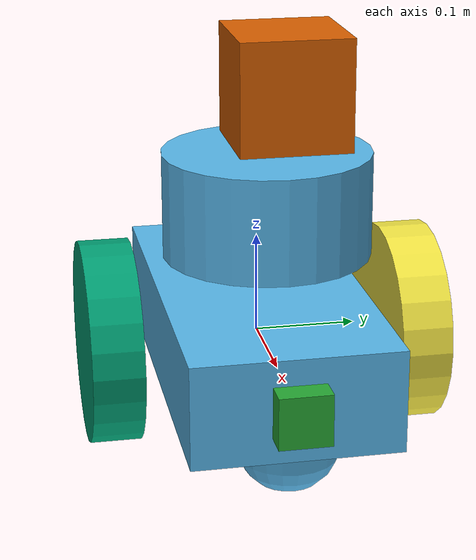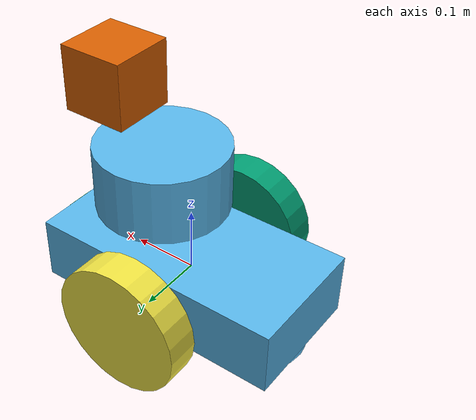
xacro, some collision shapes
<?xml version='1.0'?>

<robot name="custom_bot" xmlns:xacro="http://www.ros.org/wiki/xacro">

<xacro:include filename="$(find udacity_bot)/urdf/custom_bot.gazebo" />

  <link name="robot_footprint"></link>

  <joint name="robot_footprint_joint" type="fixed">
    <origin xyz="0 0 0" rpy="0 0 0" />
    <parent link="robot_footprint"/>
    <child link="chassis" />
  </joint>

  <link name='chassis'>
    <pose>0 0 0.1 0 0 0</pose>

    <inertial>
      <mass value="25.0"/>
      <origin xyz="0.0 0 0" rpy=" 0 0 0"/>
      <inertia
          ixx="0.1" ixy="0" ixz="0"
          iyy="0.1" iyz="0"
          izz="0.1"
      />
    </inertial>

    <collision name='collision'>
      <origin xyz="0 0 0" rpy=" 0 0 0"/>
      <geometry>
        <box size=".4 .2 .1"/>
      </geometry>
    </collision>

    <visual name='chassis_visual'>
      <origin xyz="0 0 0" rpy=" 0 0 0"/>
      <geometry>
        <box size=".4 .2 .1"/>
      </geometry>
    </visual>

    <collision name='back_caster_collision'>
      <origin xyz="-0.15 0 -0.05" rpy=" 0 0 0"/>
      <geometry>
        <sphere radius="0.05"/>
      </geometry>
      <surface>
        <friction>
          <ode>
            <mu>0</mu>
            <mu2>0</mu2>
            <slip1>1.0</slip1>
            <slip2>1.0</slip2>
          </ode>
        </friction>
      </surface>
    </collision>

    <visual name='back_caster_visual'>
      <origin xyz="-0.15 0 -0.05" rpy=" 0 0 0"/>
      <geometry>
        <sphere radius="0.05"/>
      </geometry>
    </visual>

    <collision name='front_caster_collision'>
      <origin xyz="0.15 0 -0.05" rpy=" 0 0 0"/>
      <geometry>
        <sphere radius="0.05"/>
      </geometry>
      <surface>
        <friction>
          <ode>
            <mu>0</mu>
            <mu2>0</mu2>
            <slip1>1.0</slip1>
            <slip2>1.0</slip2>
          </ode>
        </friction>
      </surface>
    </collision>

    <visual name='front_caster_visual'>
      <origin xyz="0.15 0 -0.05" rpy=" 0 0 0"/>
      <geometry>
        <sphere radius="0.05"/>
      </geometry>
    </visual>

  <visual name='second layer_visual'>
     <origin xyz="0.05 0.0 0.15" rpy="0.0 0.0 0.0"/>
     <geometry>
       <cylinder radius="0.1" length="0.10"/>
     </geometry>
   </visual>

   <collision>
     <origin xyz="0.05 0.0 0.15" rpy="0.0 0.0 0.0"/>
     <geometry>
       <cylinder radius="0.1" length="0.10"/>
     </geometry>
   </collision>

  </link>

 <link name="right_wheel">
   <inertial>
     <origin xyz="0.0 0.0 0.0" rpy="0.0 1.5707 1.5707"/>
     <mass value="5"/>
      <inertia
          ixx="0.1" ixy="0" ixz="0"
          iyy="0.1" iyz="0"
          izz="0.1"
      />
    </inertial>

   <visual>
     <origin xyz="0.0 0.0 0.0" rpy="0.0 1.5707 1.5707"/>
     <geometry>
       <cylinder radius="0.1" length="0.05"/>
     </geometry>
   </visual>

   <collision>
     <origin xyz="0.0 0.0 0.0" rpy="0.0 1.5707 1.5707"/>
     <geometry>
       <cylinder radius="0.1" length="0.05"/>
     </geometry>
   </collision>
 </link>

 <link name="left_wheel">
   <inertial>
     <origin xyz="0.0 0.0 0.0" rpy="0.0 1.5707 1.5707"/>
     <mass value="5"/>
      <inertia
          ixx="0.1" ixy="0" ixz="0"
          iyy="0.1" iyz="0"
          izz="0.1"
      />
    </inertial>

   <visual>
     <origin xyz="0.0 0.0 0.0" rpy="0.0 1.5707 1.5707"/>
     <geometry>
       <cylinder radius="0.1" length="0.05"/>
     </geometry>
   </visual>

   <collision>
     <origin xyz="0.0 0.0 0.0" rpy="0.0 1.5707 1.5707"/>
     <geometry>
       <cylinder radius="0.1" length="0.05"/>
     </geometry>
   </collision>
 </link>

  <joint type="continuous" name="left_wheel_hinge">
    <origin xyz="0 0.15 0" rpy="0 0 0"/>
    <child link="left_wheel"/>
    <parent link="chassis"/>
    <axis xyz="0 1 0" rpy="0 0 0"/>
    <limit effort="10000" velocity="1000"/>
    <joint_properties damping="1.0" friction="1.0"/>
  </joint>

  <joint type="continuous" name="right_wheel_hinge">
    <origin xyz="0 -0.15 0" rpy="0 0 0"/>
    <child link="right_wheel"/>
    <parent link="chassis"/>
    <axis xyz="0 1 0" rpy="0 0 0"/>
    <limit effort="10000" velocity="1000"/>
    <joint_properties damping="1.0" friction="1.0"/>
  </joint>

 <link name="camera">
   <inertial>
     <origin xyz="0.0 0.0 0.0" rpy="0.0 0.0 0.0"/>
     <mass value="0.1"/>
      <inertia ixx="1e-6" ixy="0" ixz="0" iyy="1e-6" iyz="0" izz="1e-6"/>
    </inertial>

   <visual>
     <origin xyz="0.0 0.0 0.0" rpy="0.0 0.0 0.0"/>
     <geometry>
       <box size=".05 .05 .05"/>
     </geometry>
   </visual>

   <collision>
     <origin xyz="0.0 0.0 0.0" rpy="0.0 0.0 0.0"/>
     <geometry>
       <box size=".05 .05 .05"/>
     </geometry>
   </collision>
 </link>

  <joint type="fixed" name="camera_joint">
    <origin xyz="0.2 0.0 0.0" rpy="0 0 0"/>
    <child link="camera"/>
    <parent link="chassis"/>
    <axis xyz="0 2 0" rpy="0 0 0"/>
  </joint>

<link name="hokuyo">
   <inertial>
     <origin xyz="-0.02 0.0 0.18" rpy="0.0 0.0 0.0"/>
     <mass value="0.1"/>
      <inertia
        ixx="1e-6" ixy="0" ixz="0"
         iyy="1e-6" iyz="0"
         izz="1e-6"/>
    </inertial>

   <visual>
     <origin xyz="-0.02 0.0 0.18" rpy="0.0 0.0 0.0"/>
     <geometry>
     <mesh filename="package://udacity_bot/meshes/hokuyo.dae"/>
     </geometry>

   </visual>

   <collision>
     <origin xyz="-0.02 0.0 0.18" rpy="0.0 0.0 0.0"/>
     <geometry>
       <box size="0.1 .1 .1"/>
     </geometry>
   </collision>
 </link>

  <joint type="fixed" name="hokuyo_joint">
    <origin xyz=".15 0 .1" rpy="0 0 0"/>
    <child link="hokuyo"/>
    <parent link="chassis"/>
    <axis xyz="0 1 0" rpy="0 0 0"/>
  </joint>

</robot>
